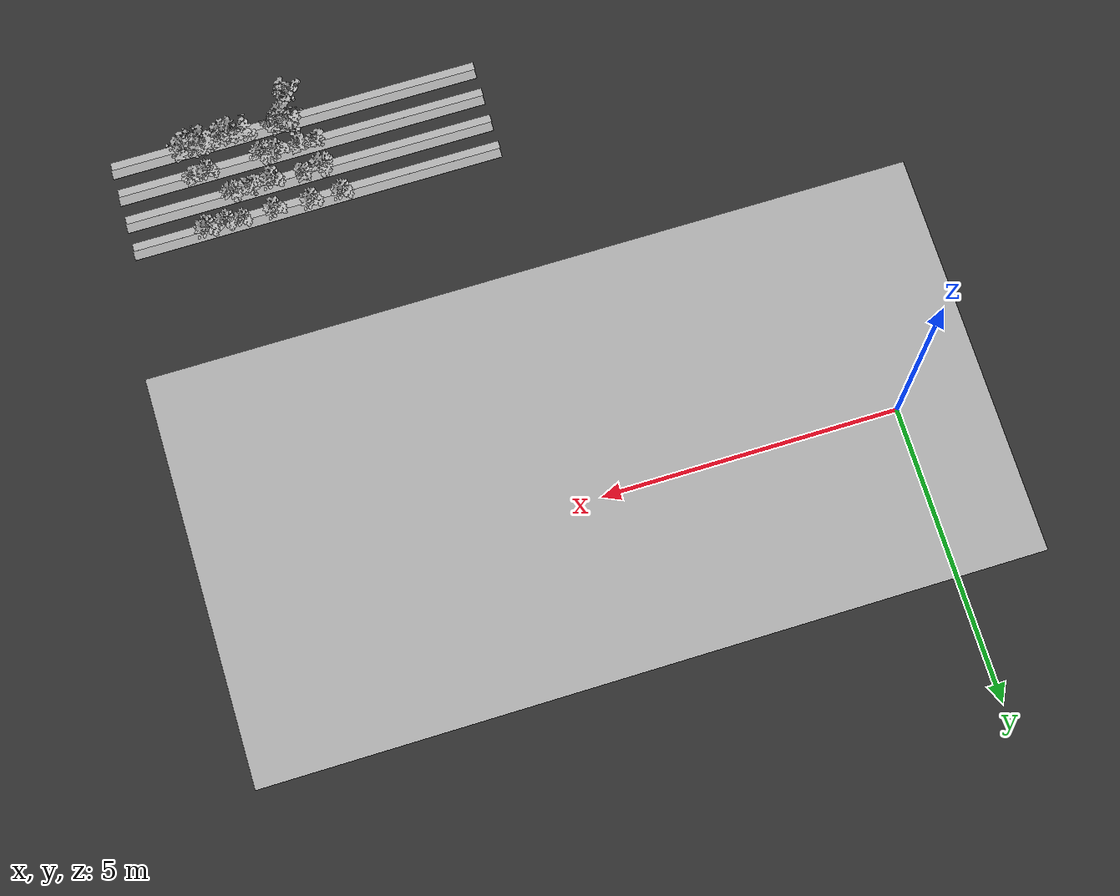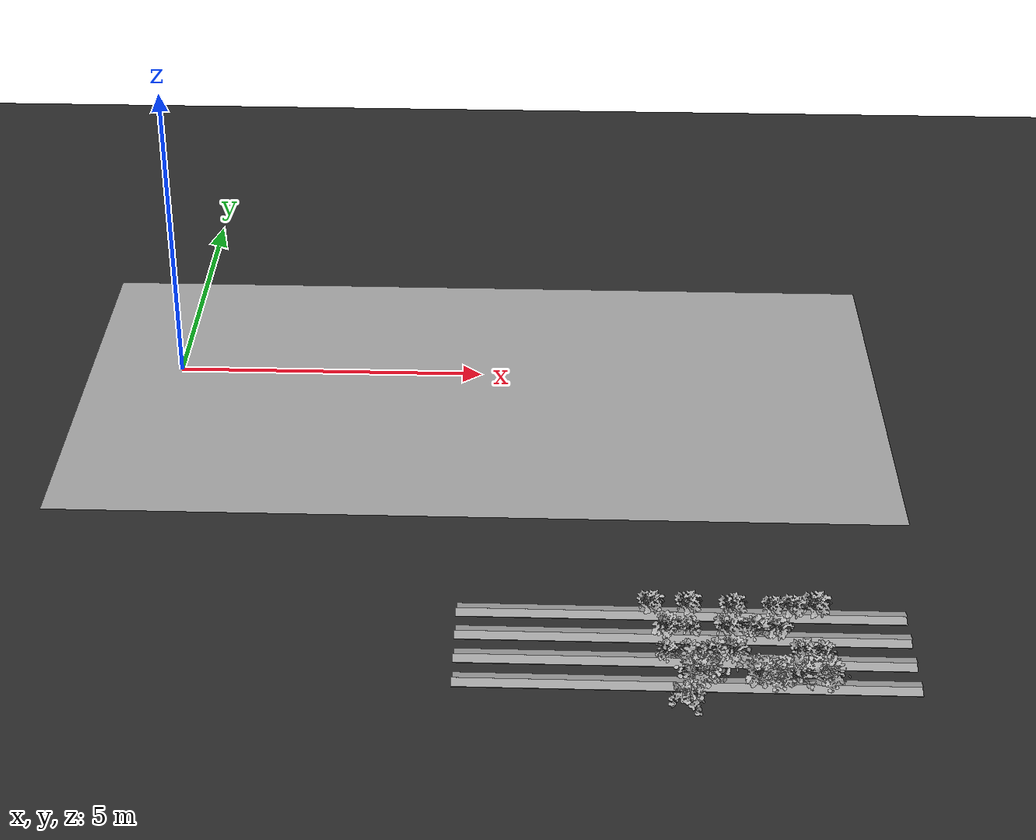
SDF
<sdf version="1.7">
 <world name="default">
  <model name="ground_plane">
   <static>1</static>
   <link name="link">
    <collision name="collision">
     <geometry><plane><normal>0 0 1</normal><size>100 100</size></plane></geometry>
     <surface>
      <contact><collide_bitmask>65535</collide_bitmask></contact>
      <friction><ode><mu>100</mu><mu2>50</mu2></ode></friction>
     </surface>
    </collision>
    <visual name="visual">
     <cast_shadows>0</cast_shadows>
     <geometry><plane><normal>0 0 1</normal><size>100 100</size></plane></geometry>
     <material>
      <ambient>0.2 0.2 0.2 1.0</ambient>
      <diffuse>0.2 0.2 0.2 1.0</diffuse>
      <specular>0.2 0.2 0.2 1.0</specular>
      <emissive>0.2 0.2 0.2 1.0</emissive>
     </material>
    </visual>
   </link>
  </model>
  <model name="ground">
   <pose>5 -0.5 0.01  3.141592654 0 0</pose>
   <static>true</static>
   <link name="body">
    <visual name="visual">
     <cast_shadows>0</cast_shadows>
     <geometry>
      <mesh><uri>file:///home/ifcosta/final_ws/src/cnn_line/worlds/models/ground.obj</uri></mesh>
     </geometry>
    </visual>
   </link>
  </model>
  <model name="plt_20026">
   <pose>7.75 -7.27 0.0115 0.0 0.0 0.17191</pose>
   <static>true</static>
   <link name="body">
    <visual name="visual">
     <geometry>
      <mesh><uri>file:///home/ifcosta/final_ws/src/cnn_line/worlds/models/plant20.obj</uri></mesh>
     </geometry>
    </visual>
   </link>
  </model>
  <model name="plt_20027">
   <pose>8.06 -7.26 0.0198 0.0 0.0 0.43862</pose>
   <static>true</static>
   <link name="body">
    <visual name="visual">
     <geometry>
      <mesh><uri>file:///home/ifcosta/final_ws/src/cnn_line/worlds/models/plant20.obj</uri></mesh>
     </geometry>
    </visual>
   </link>
  </model>
  <model name="plt_20028">
   <pose>8.4 -7.25 0.0158 0.0 0.0 -0.079509</pose>
   <static>true</static>
   <link name="body">
    <visual name="visual">
     <geometry>
      <mesh><uri>file:///home/ifcosta/final_ws/src/cnn_line/worlds/models/plant21.obj</uri></mesh>
     </geometry>
    </visual>
   </link>
  </model>
  <model name="plt_20029">
   <pose>8.66 -7.24 0.0158 0.0 0.0 -0.49195</pose>
   <static>true</static>
   <link name="body">
    <visual name="visual">
     <geometry>
      <mesh><uri>file:///home/ifcosta/final_ws/src/cnn_line/worlds/models/plant22.obj</uri></mesh>
     </geometry>
    </visual>
   </link>
  </model>
  <model name="plt_20032">
   <pose>9.61 -7.22 0.014 0.0 0.0 -0.44802</pose>
   <static>true</static>
   <link name="body">
    <visual name="visual">
     <geometry>
      <mesh><uri>file:///home/ifcosta/final_ws/src/cnn_line/worlds/models/plant21.obj</uri></mesh>
     </geometry>
    </visual>
   </link>
  </model>
  <model name="plt_20033">
   <pose>9.89 -7.22 0.014 0.0 0.0 0.54796</pose>
   <static>true</static>
   <link name="body">
    <visual name="visual">
     <geometry>
      <mesh><uri>file:///home/ifcosta/final_ws/src/cnn_line/worlds/models/plant20.obj</uri></mesh>
     </geometry>
    </visual>
   </link>
  </model>
  <model name="slope_834">
   <pose>8.0 -7.25 -0.005 0.0 0.0 0.0</pose>
   <static>true</static>
   <link name="body">
    <visual name="visual">
     <geometry>
      <mesh><uri>file:///home/ifcosta/final_ws/src/cnn_line/worlds/models/slope.obj</uri></mesh>
     </geometry>
    </visual>
   </link>
  </model>
  <model name="slope_934">
   <pose>8.0 -7.25 -0.005 0.0 0.0 3.1416</pose>
   <static>true</static>
   <link name="body">
    <visual name="visual">
     <geometry>
      <mesh><uri>file:///home/ifcosta/final_ws/src/cnn_line/worlds/models/slope.obj</uri></mesh>
     </geometry>
    </visual>
   </link>
  </model>
  <model name="plt_20060">
   <pose>7.77 -6.75 0.014 0.0 0.0 -0.6189</pose>
   <static>true</static>
   <link name="body">
    <visual name="visual">
     <geometry>
      <mesh><uri>file:///home/ifcosta/final_ws/src/cnn_line/worlds/models/plant22.obj</uri></mesh>
     </geometry>
    </visual>
   </link>
  </model>
  <model name="plt_20061">
   <pose>8.11 -6.75 0.0173 0.0 0.0 1.5317</pose>
   <static>true</static>
   <link name="body">
    <visual name="visual">
     <geometry>
      <mesh><uri>file:///home/ifcosta/final_ws/src/cnn_line/worlds/models/plant20.obj</uri></mesh>
     </geometry>
    </visual>
   </link>
  </model>
  <model name="plt_20063">
   <pose>8.62 -6.75 0.0153 0.0 0.0 0.19099</pose>
   <static>true</static>
   <link name="body">
    <visual name="visual">
     <geometry>
      <mesh><uri>file:///home/ifcosta/final_ws/src/cnn_line/worlds/models/plant22.obj</uri></mesh>
     </geometry>
    </visual>
   </link>
  </model>
  <model name="plt_20064">
   <pose>9.0 -6.77 0.0196 0.0 0.0 0.69321</pose>
   <static>true</static>
   <link name="body">
    <visual name="visual">
     <geometry>
      <mesh><uri>file:///home/ifcosta/final_ws/src/cnn_line/worlds/models/plant21.obj</uri></mesh>
     </geometry>
    </visual>
   </link>
  </model>
  <model name="plt_20065">
   <pose>9.31 -6.73 0.0123 0.0 0.0 -1.0074</pose>
   <static>true</static>
   <link name="body">
    <visual name="visual">
     <geometry>
      <mesh><uri>file:///home/ifcosta/final_ws/src/cnn_line/worlds/models/plant21.obj</uri></mesh>
     </geometry>
    </visual>
   </link>
  </model>
  <model name="slope_868">
   <pose>8.0 -6.75 -0.005 0.0 0.0 0.0</pose>
   <static>true</static>
   <link name="body">
    <visual name="visual">
     <geometry>
      <mesh><uri>file:///home/ifcosta/final_ws/src/cnn_line/worlds/models/slope.obj</uri></mesh>
     </geometry>
    </visual>
   </link>
  </model>
  <model name="slope_968">
   <pose>8.0 -6.75 -0.005 0.0 0.0 3.1416</pose>
   <static>true</static>
   <link name="body">
    <visual name="visual">
     <geometry>
      <mesh><uri>file:///home/ifcosta/final_ws/src/cnn_line/worlds/models/slope.obj</uri></mesh>
     </geometry>
    </visual>
   </link>
  </model>
  <model name="plt_20093">
   <pose>7.56 -6.22 0.0167 0.0 0.0 -0.5616</pose>
   <static>true</static>
   <link name="body">
    <visual name="visual">
     <geometry>
      <mesh><uri>file:///home/ifcosta/final_ws/src/cnn_line/worlds/models/plant21.obj</uri></mesh>
     </geometry>
    </visual>
   </link>
  </model>
  <model name="plt_20095">
   <pose>8.09 -6.22 0.0172 0.0 0.0 -0.42992</pose>
   <static>true</static>
   <link name="body">
    <visual name="visual">
     <geometry>
      <mesh><uri>file:///home/ifcosta/final_ws/src/cnn_line/worlds/models/plant21.obj</uri></mesh>
     </geometry>
    </visual>
   </link>
  </model>
  <model name="plt_20097">
   <pose>8.71 -6.25 0.0126 0.0 0.0 -0.27284</pose>
   <static>true</static>
   <link name="body">
    <visual name="visual">
     <geometry>
      <mesh><uri>file:///home/ifcosta/final_ws/src/cnn_line/worlds/models/plant21.obj</uri></mesh>
     </geometry>
    </visual>
   </link>
  </model>
  <model name="plt_20099">
   <pose>9.27 -6.23 0.0146 0.0 0.0 -1.4853</pose>
   <static>true</static>
   <link name="body">
    <visual name="visual">
     <geometry>
      <mesh><uri>file:///home/ifcosta/final_ws/src/cnn_line/worlds/models/plant20.obj</uri></mesh>
     </geometry>
    </visual>
   </link>
  </model>
  <model name="plt_20100">
   <pose>9.55 -6.26 0.0164 0.0 0.0 -0.75488</pose>
   <static>true</static>
   <link name="body">
    <visual name="visual">
     <geometry>
      <mesh><uri>file:///home/ifcosta/final_ws/src/cnn_line/worlds/models/plant21.obj</uri></mesh>
     </geometry>
    </visual>
   </link>
  </model>
  <model name="plt_20101">
   <pose>9.87 -6.23 0.0153 0.0 0.0 0.11749</pose>
   <static>true</static>
   <link name="body">
    <visual name="visual">
     <geometry>
      <mesh><uri>file:///home/ifcosta/final_ws/src/cnn_line/worlds/models/plant22.obj</uri></mesh>
     </geometry>
    </visual>
   </link>
  </model>
  <model name="slope_902">
   <pose>8.0 -6.25 -0.005 0.0 0.0 0.0</pose>
   <static>true</static>
   <link name="body">
    <visual name="visual">
     <geometry>
      <mesh><uri>file:///home/ifcosta/final_ws/src/cnn_line/worlds/models/slope.obj</uri></mesh>
     </geometry>
    </visual>
   </link>
  </model>
  <model name="slope_1002">
   <pose>8.0 -6.25 -0.005 0.0 0.0 3.1416</pose>
   <static>true</static>
   <link name="body">
    <visual name="visual">
     <geometry>
      <mesh><uri>file:///home/ifcosta/final_ws/src/cnn_line/worlds/models/slope.obj</uri></mesh>
     </geometry>
    </visual>
   </link>
  </model>
  <model name="plt_30163">
   <pose>8.08 -8.2 0.013 0.0 0.0 -0.809</pose>
   <static>true</static>
   <link name="body">
    <visual name="visual">
     <geometry>
      <mesh><uri>file:///home/ifcosta/final_ws/src/cnn_line/worlds/models/plant34.obj</uri></mesh>
     </geometry>
    </visual>
   </link>
  </model>
  <model name="plt_30197">
   <pose>8.11 -7.74 0.0163 0.0 0.0 -0.53737</pose>
   <static>true</static>
   <link name="body">
    <visual name="visual">
     <geometry>
      <mesh><uri>file:///home/ifcosta/final_ws/src/cnn_line/worlds/models/plant36.obj</uri></mesh>
     </geometry>
    </visual>
   </link>
  </model>
  <model name="plt_30198">
   <pose>8.36 -7.75 0.0168 0.0 0.0 -0.21448</pose>
   <static>true</static>
   <link name="body">
    <visual name="visual">
     <geometry>
      <mesh><uri>file:///home/ifcosta/final_ws/src/cnn_line/worlds/models/plant33.obj</uri></mesh>
     </geometry>
    </visual>
   </link>
  </model>
  <model name="plt_30200">
   <pose>8.98 -7.77 0.0117 0.0 0.0 0.16614</pose>
   <static>true</static>
   <link name="body">
    <visual name="visual">
     <geometry>
      <mesh><uri>file:///home/ifcosta/final_ws/src/cnn_line/worlds/models/plant36.obj</uri></mesh>
     </geometry>
    </visual>
   </link>
  </model>
  <model name="plt_30201">
   <pose>9.28 -7.77 0.0168 0.0 0.0 0.51204</pose>
   <static>true</static>
   <link name="body">
    <visual name="visual">
     <geometry>
      <mesh><uri>file:///home/ifcosta/final_ws/src/cnn_line/worlds/models/plant31.obj</uri></mesh>
     </geometry>
    </visual>
   </link>
  </model>
  <model name="plt_30202">
   <pose>9.59 -7.73 0.017 0.0 0.0 -0.29887</pose>
   <static>true</static>
   <link name="body">
    <visual name="visual">
     <geometry>
      <mesh><uri>file:///home/ifcosta/final_ws/src/cnn_line/worlds/models/plant32.obj</uri></mesh>
     </geometry>
    </visual>
   </link>
  </model>
  <model name="plt_30203">
   <pose>9.94 -7.73 0.0136 0.0 0.0 0.78654</pose>
   <static>true</static>
   <link name="body">
    <visual name="visual">
     <geometry>
      <mesh><uri>file:///home/ifcosta/final_ws/src/cnn_line/worlds/models/plant31.obj</uri></mesh>
     </geometry>
    </visual>
   </link>
  </model>
  <model name="slope_1404">
   <pose>8.0 -7.75 -0.005 0.0 0.0 0.0</pose>
   <static>true</static>
   <link name="body">
    <visual name="visual">
     <geometry>
      <mesh><uri>file:///home/ifcosta/final_ws/src/cnn_line/worlds/models/slope.obj</uri></mesh>
     </geometry>
    </visual>
   </link>
  </model>
  <model name="slope_1504">
   <pose>8.0 -7.75 -0.005 0.0 0.0 3.1416</pose>
   <static>true</static>
   <link name="body">
    <visual name="visual">
     <geometry>
      <mesh><uri>file:///home/ifcosta/final_ws/src/cnn_line/worlds/models/slope.obj</uri></mesh>
     </geometry>
    </visual>
   </link>
  </model>
 </world>
</sdf>
